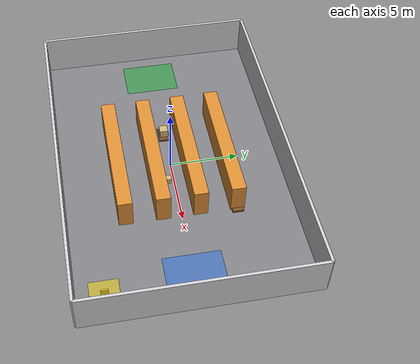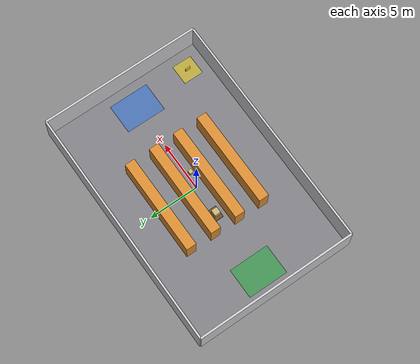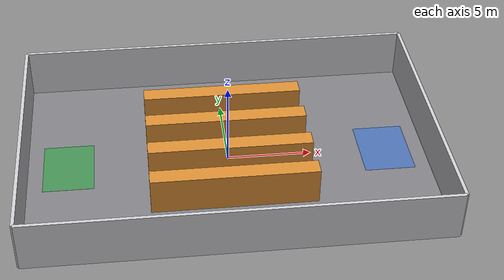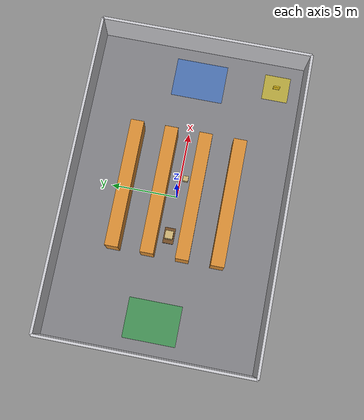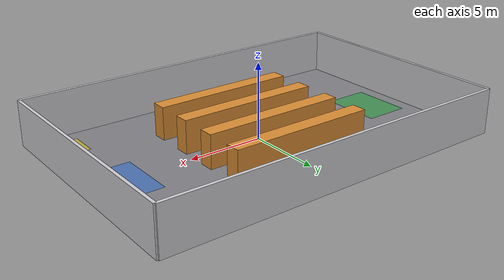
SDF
<?xml version="1.0" ?>
<sdf version="1.8">
  <world name="amr_warehouse">

    <physics name="1ms" type="ignored">
      <max_step_size>0.001</max_step_size>
      <real_time_factor>1.0</real_time_factor>
    </physics>

    <!-- Core Fortress systems (compatibility path) -->
    <plugin filename="libignition-gazebo-physics-system.so"
            name="ignition::gazebo::systems::Physics"/>
    <plugin filename="libignition-gazebo-user-commands-system.so"
            name="ignition::gazebo::systems::UserCommands"/>
    <plugin filename="libignition-gazebo-scene-broadcaster-system.so"
            name="ignition::gazebo::systems::SceneBroadcaster"/>
    <!-- Contact + IMU systems so those sensors work if added -->
    <plugin filename="libignition-gazebo-imu-system.so"
            name="ignition::gazebo::systems::Imu"/>

    <scene>
      <ambient>0.6 0.6 0.6 1</ambient>
      <background>0.8 0.85 0.9 1</background>
      <grid>false</grid>
    </scene>

    <light type="directional" name="sun">
      <cast_shadows>true</cast_shadows>
      <pose>0 0 10 0 0 0</pose>
      <diffuse>0.9 0.9 0.9 1</diffuse>
      <specular>0.2 0.2 0.2 1</specular>
      <direction>-0.5 0.3 -1</direction>
    </light>

    <!-- Ground plane -->
    <model name="floor">
      <static>true</static>
      <link name="link">
        <collision name="collision">
          <geometry><plane><normal>0 0 1</normal><size>100 100</size></plane></geometry>
        </collision>
        <visual name="visual">
          <geometry><plane><normal>0 0 1</normal><size>24.0 16.0</size></plane></geometry>
          <material>
            <ambient>0.4 0.4 0.42 1</ambient>
            <diffuse>0.5 0.5 0.52 1</diffuse>
          </material>
        </visual>
      </link>
    </model>

    <model name="wall_north">
      <static>true</static>
      <pose>0.000 8.000 1.500 0 0 0</pose>
      <link name="link">
        <collision name="collision">
          <geometry><box><size>24.000 0.200 3.000</size></box></geometry>
        </collision>
        <visual name="visual">
          <geometry><box><size>24.000 0.200 3.000</size></box></geometry>
          <material>
            <ambient>0.8 0.8 0.82 1.0</ambient>
            <diffuse>0.8 0.8 0.82 1.0</diffuse>
            <specular>0.1 0.1 0.1 1</specular>
          </material>
        </visual>
      </link>
    </model>

    <model name="wall_south">
      <static>true</static>
      <pose>0.000 -8.000 1.500 0 0 0</pose>
      <link name="link">
        <collision name="collision">
          <geometry><box><size>24.000 0.200 3.000</size></box></geometry>
        </collision>
        <visual name="visual">
          <geometry><box><size>24.000 0.200 3.000</size></box></geometry>
          <material>
            <ambient>0.8 0.8 0.82 1.0</ambient>
            <diffuse>0.8 0.8 0.82 1.0</diffuse>
            <specular>0.1 0.1 0.1 1</specular>
          </material>
        </visual>
      </link>
    </model>

    <model name="wall_east">
      <static>true</static>
      <pose>12.000 0.000 1.500 0 0 0</pose>
      <link name="link">
        <collision name="collision">
          <geometry><box><size>0.200 16.000 3.000</size></box></geometry>
        </collision>
        <visual name="visual">
          <geometry><box><size>0.200 16.000 3.000</size></box></geometry>
          <material>
            <ambient>0.8 0.8 0.82 1.0</ambient>
            <diffuse>0.8 0.8 0.82 1.0</diffuse>
            <specular>0.1 0.1 0.1 1</specular>
          </material>
        </visual>
      </link>
    </model>

    <model name="wall_west">
      <static>true</static>
      <pose>-12.000 0.000 1.500 0 0 0</pose>
      <link name="link">
        <collision name="collision">
          <geometry><box><size>0.200 16.000 3.000</size></box></geometry>
        </collision>
        <visual name="visual">
          <geometry><box><size>0.200 16.000 3.000</size></box></geometry>
          <material>
            <ambient>0.8 0.8 0.82 1.0</ambient>
            <diffuse>0.8 0.8 0.82 1.0</diffuse>
            <specular>0.1 0.1 0.1 1</specular>
          </material>
        </visual>
      </link>
    </model>

    <model name="rack_N1">
      <static>true</static>
      <pose>0.000 1.300 1.100 0 0 0</pose>
      <link name="link">
        <collision name="collision">
          <geometry><box><size>9.600 1.000 2.200</size></box></geometry>
        </collision>
        <visual name="visual">
          <geometry><box><size>9.600 1.000 2.200</size></box></geometry>
          <material>
            <ambient>0.85 0.55 0.2 1.0</ambient>
            <diffuse>0.85 0.55 0.2 1.0</diffuse>
            <specular>0.1 0.1 0.1 1</specular>
          </material>
        </visual>
      </link>
    </model>

    <model name="rack_N2">
      <static>true</static>
      <pose>0.000 3.900 1.100 0 0 0</pose>
      <link name="link">
        <collision name="collision">
          <geometry><box><size>9.600 1.000 2.200</size></box></geometry>
        </collision>
        <visual name="visual">
          <geometry><box><size>9.600 1.000 2.200</size></box></geometry>
          <material>
            <ambient>0.85 0.55 0.2 1.0</ambient>
            <diffuse>0.85 0.55 0.2 1.0</diffuse>
            <specular>0.1 0.1 0.1 1</specular>
          </material>
        </visual>
      </link>
    </model>

    <model name="rack_S1">
      <static>true</static>
      <pose>0.000 -1.300 1.100 0 0 0</pose>
      <link name="link">
        <collision name="collision">
          <geometry><box><size>9.600 1.000 2.200</size></box></geometry>
        </collision>
        <visual name="visual">
          <geometry><box><size>9.600 1.000 2.200</size></box></geometry>
          <material>
            <ambient>0.85 0.55 0.2 1.0</ambient>
            <diffuse>0.85 0.55 0.2 1.0</diffuse>
            <specular>0.1 0.1 0.1 1</specular>
          </material>
        </visual>
      </link>
    </model>

    <model name="rack_S2">
      <static>true</static>
      <pose>0.000 -3.900 1.100 0 0 0</pose>
      <link name="link">
        <collision name="collision">
          <geometry><box><size>9.600 1.000 2.200</size></box></geometry>
        </collision>
        <visual name="visual">
          <geometry><box><size>9.600 1.000 2.200</size></box></geometry>
          <material>
            <ambient>0.85 0.55 0.2 1.0</ambient>
            <diffuse>0.85 0.55 0.2 1.0</diffuse>
            <specular>0.1 0.1 0.1 1</specular>
          </material>
        </visual>
      </link>
    </model>

    <model name="pallet_1">
      <static>true</static>
      <pose>-3.000 0.000 0.075 0 0 0</pose>
      <link name="link">
        <collision name="collision">
          <geometry><box><size>1.200 0.800 0.150</size></box></geometry>
        </collision>
        <visual name="visual">
          <geometry><box><size>1.200 0.800 0.150</size></box></geometry>
          <material>
            <ambient>0.45 0.3 0.15 1.0</ambient>
            <diffuse>0.45 0.3 0.15 1.0</diffuse>
            <specular>0.1 0.1 0.1 1</specular>
          </material>
        </visual>
      </link>
    </model>

    <model name="box_on_pallet_1">
      <static>true</static>
      <pose>-3.000 0.000 0.450 0 0 0</pose>
      <link name="link">
        <collision name="collision">
          <geometry><box><size>0.600 0.600 0.600</size></box></geometry>
        </collision>
        <visual name="visual">
          <geometry><box><size>0.600 0.600 0.600</size></box></geometry>
          <material>
            <ambient>0.8 0.7 0.45 1.0</ambient>
            <diffuse>0.8 0.7 0.45 1.0</diffuse>
            <specular>0.1 0.1 0.1 1</specular>
          </material>
        </visual>
      </link>
    </model>

    <model name="pallet_2">
      <static>true</static>
      <pose>4.500 3.900 0.075 0 0 0</pose>
      <link name="link">
        <collision name="collision">
          <geometry><box><size>1.200 0.800 0.150</size></box></geometry>
        </collision>
        <visual name="visual">
          <geometry><box><size>1.200 0.800 0.150</size></box></geometry>
          <material>
            <ambient>0.45 0.3 0.15 1.0</ambient>
            <diffuse>0.45 0.3 0.15 1.0</diffuse>
            <specular>0.1 0.1 0.1 1</specular>
          </material>
        </visual>
      </link>
    </model>

    <model name="box_stray_1">
      <static>true</static>
      <pose>1.500 -0.400 0.200 0 0 0</pose>
      <link name="link">
        <collision name="collision">
          <geometry><box><size>0.400 0.400 0.400</size></box></geometry>
        </collision>
        <visual name="visual">
          <geometry><box><size>0.400 0.400 0.400</size></box></geometry>
          <material>
            <ambient>0.8 0.7 0.45 1.0</ambient>
            <diffuse>0.8 0.7 0.45 1.0</diffuse>
            <specular>0.1 0.1 0.1 1</specular>
          </material>
        </visual>
      </link>
    </model>

    <model name="zone_loading">
      <static>true</static>
      <pose>-9.500 0.000 0.005 0 0 0</pose>
      <link name="link">
        <visual name="visual">
          <geometry><box><size>3.000 4.000 0.01</size></box></geometry>
          <material>
            <ambient>0.15 0.65 0.25 0.6</ambient>
            <diffuse>0.15 0.65 0.25 0.6</diffuse>
          </material>
        </visual>
      </link>
    </model>

    <model name="zone_delivery">
      <static>true</static>
      <pose>9.500 0.000 0.005 0 0 0</pose>
      <link name="link">
        <visual name="visual">
          <geometry><box><size>3.000 4.000 0.01</size></box></geometry>
          <material>
            <ambient>0.2 0.45 0.85 0.6</ambient>
            <diffuse>0.2 0.45 0.85 0.6</diffuse>
          </material>
        </visual>
      </link>
    </model>

    <model name="zone_docking_future">
      <static>true</static>
      <pose>10.000 -6.000 0.005 0 0 0</pose>
      <link name="link">
        <visual name="visual">
          <geometry><box><size>2.000 2.000 0.01</size></box></geometry>
          <material>
            <ambient>0.9 0.8 0.1 0.6</ambient>
            <diffuse>0.9 0.8 0.1 0.6</diffuse>
          </material>
        </visual>
      </link>
    </model>

    <model name="dock_post">
      <static>true</static>
      <pose>10.000 -6.000 0.250 0 0 0</pose>
      <link name="link">
        <collision name="collision">
          <geometry><box><size>0.100 0.500 0.500</size></box></geometry>
        </collision>
        <visual name="visual">
          <geometry><box><size>0.100 0.500 0.500</size></box></geometry>
          <material>
            <ambient>0.95 0.8 0.1 1.0</ambient>
            <diffuse>0.95 0.8 0.1 1.0</diffuse>
            <specular>0.1 0.1 0.1 1</specular>
          </material>
        </visual>
      </link>
    </model>

  </world>
</sdf>
